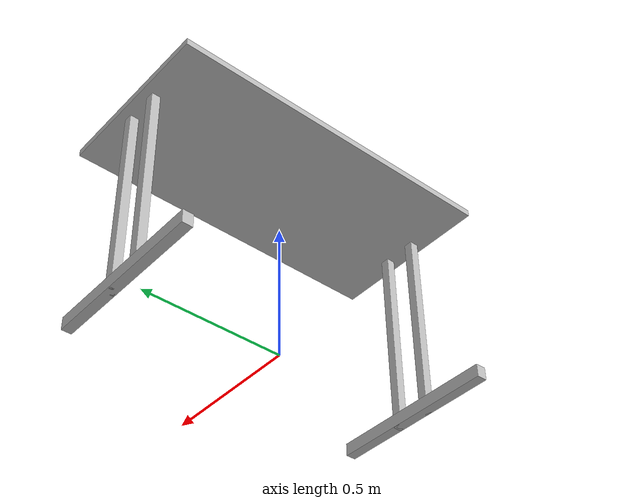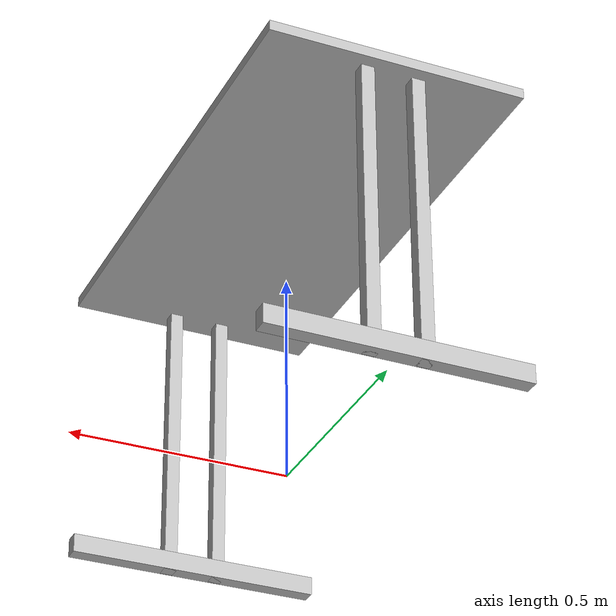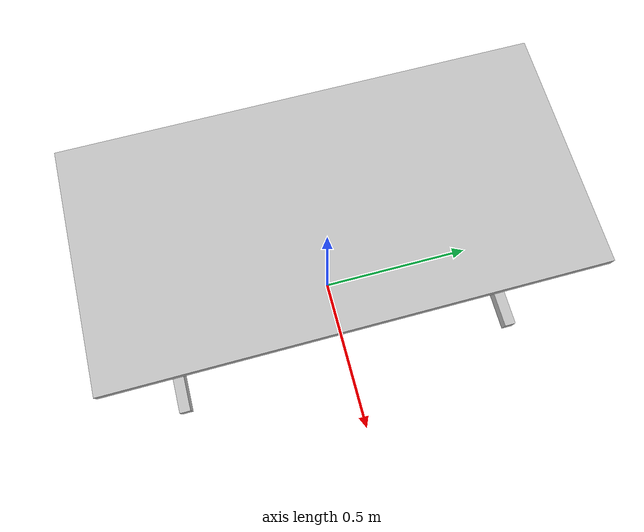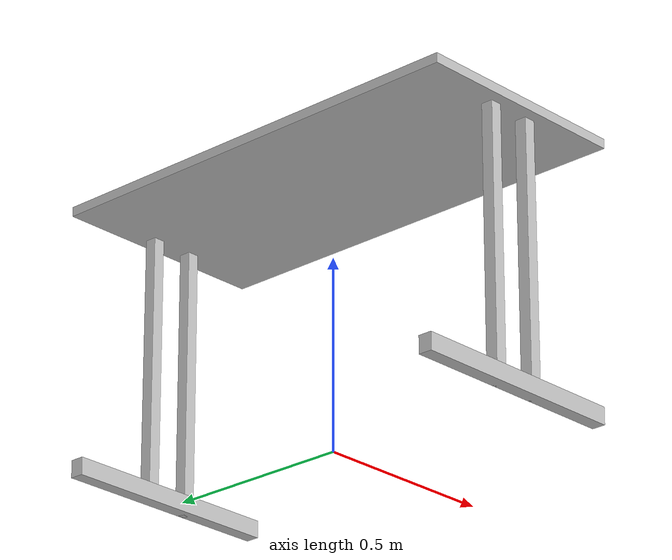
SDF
<?xml version="1.0"?>
<sdf version="1.6">
  <model name="rwc2016/table_bureau">
    <link name="1_link">
      <collision name="1_col">
        <geometry>
          <box>
            <size>0.601 1.2 0.025</size>
          </box>
        </geometry>
      </collision>
      <visual name="1_vis">
        <geometry>
          <box>
            <size>0.601 1.2 0.025</size>
          </box>
        </geometry>
        <material>
          <ambient>0.75 0.75 0.75 1</ambient>
        </material>
      </visual>
      <pose>0 0 0.7115 0 0 0</pose>
    </link>
    <link name="2_link">
      <collision name="2_col">
        <geometry>
          <box>
            <size>0.031 0.031 0.699</size>
          </box>
        </geometry>
      </collision>
      <visual name="2_vis">
        <geometry>
          <box>
            <size>0.031 0.031 0.699</size>
          </box>
        </geometry>
        <material>
          <ambient>0.75 0.75 0.75 1</ambient>
        </material>
      </visual>
      <pose>-0.06 -0.5545 0.3495 0 0 0</pose>
    </link>
    <link name="3_link">
      <collision name="3_col">
        <geometry>
          <box>
            <size>0.031 0.031 0.699</size>
          </box>
        </geometry>
      </collision>
      <visual name="3_vis">
        <geometry>
          <box>
            <size>0.031 0.031 0.699</size>
          </box>
        </geometry>
        <material>
          <ambient>0.75 0.75 0.75 1</ambient>
        </material>
      </visual>
      <pose>-0.06 0.5545 0.3495 0 0 0</pose>
    </link>
    <link name="4_link">
      <collision name="4_col">
        <geometry>
          <box>
            <size>0.031 0.031 0.699</size>
          </box>
        </geometry>
      </collision>
      <visual name="4_vis">
        <geometry>
          <box>
            <size>0.031 0.031 0.699</size>
          </box>
        </geometry>
        <material>
          <ambient>0.75 0.75 0.75 1</ambient>
        </material>
      </visual>
      <pose>0.06 -0.5545 0.3495 0 0 0</pose>
    </link>
    <link name="5_link">
      <collision name="5_col">
        <geometry>
          <box>
            <size>0.031 0.031 0.699</size>
          </box>
        </geometry>
      </collision>
      <visual name="5_vis">
        <geometry>
          <box>
            <size>0.031 0.031 0.699</size>
          </box>
        </geometry>
        <material>
          <ambient>0.75 0.75 0.75 1</ambient>
        </material>
      </visual>
      <pose>0.06 0.5545 0.3495 0 0 0</pose>
    </link>
    <link name="6_link">
      <collision name="6_col">
        <geometry>
          <box>
            <size>0.603 0.036 0.045</size>
          </box>
        </geometry>
      </collision>
      <visual name="6_vis">
        <geometry>
          <box>
            <size>0.603 0.036 0.045</size>
          </box>
        </geometry>
        <material>
          <ambient>0.75 0.75 0.75 1</ambient>
        </material>
      </visual>
      <pose>0.0 0.555 0.0225 0 0 0</pose>
    </link>
    <link name="7_link">
      <collision name="7_col">
        <geometry>
          <box>
            <size>0.603 0.036 0.045</size>
          </box>
        </geometry>
      </collision>
      <visual name="7_vis">
        <geometry>
          <box>
            <size>0.603 0.036 0.045</size>
          </box>
        </geometry>
        <material>
          <ambient>0.75 0.75 0.75 1</ambient>
        </material>
      </visual>
      <pose>0.0 -0.555 0.0225 0 0 0</pose>
    </link>
    <link name="on_top_of">
      <virtual_volume name="on_top_of_vv">
        <geometry>
          <box>
            <size>0.541 1.14 0.25</size>
          </box>
        </geometry>
        <pose>0.0 0.0 0.869 0 0 0</pose>
      </virtual_volume>
    </link>
    <link name="in_front_of">
      <virtual_volume name="in_front_of_vv">
        <geometry>
          <box>
            <size>0.48 0.9 0.01</size>
          </box>
        </geometry>
        <pose>0.86 0.0 0.005 0 0 0</pose>
      </virtual_volume>
    </link>
    <static>true</static>
  </model>
</sdf>
